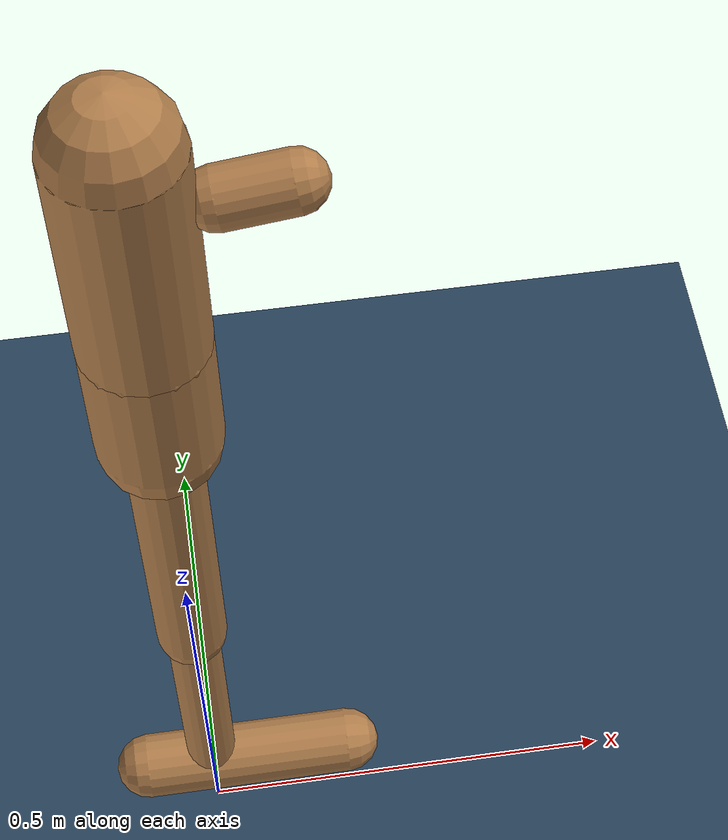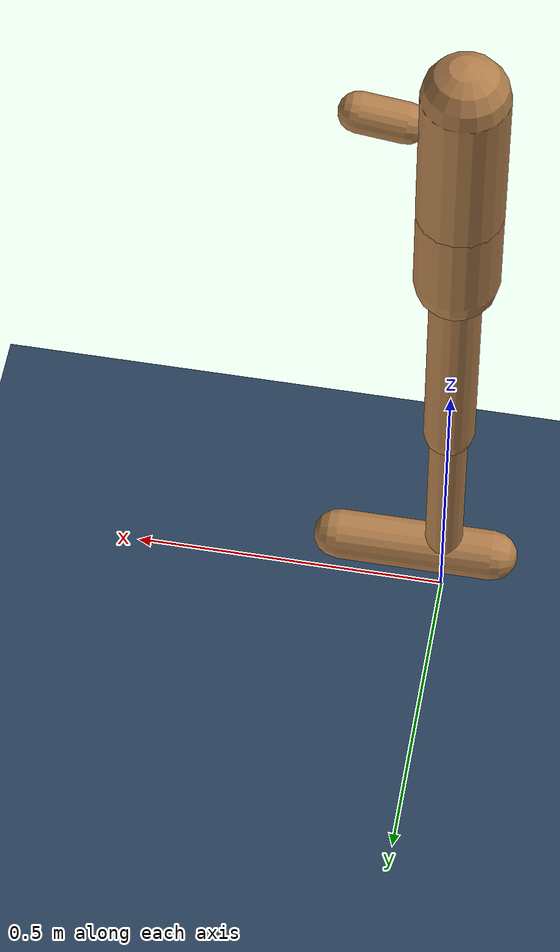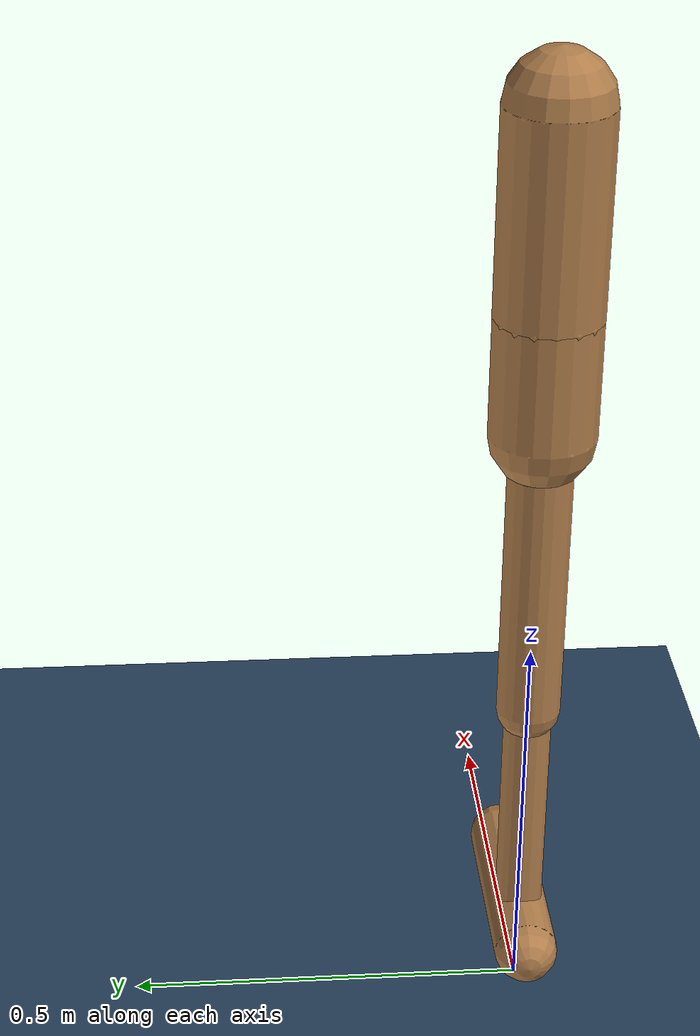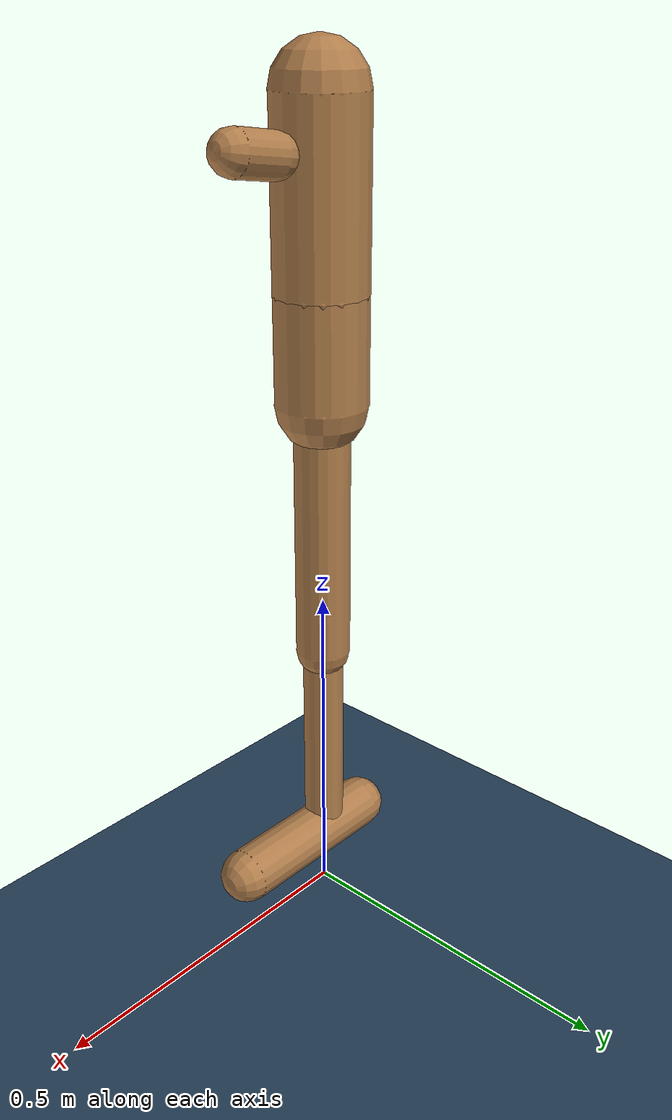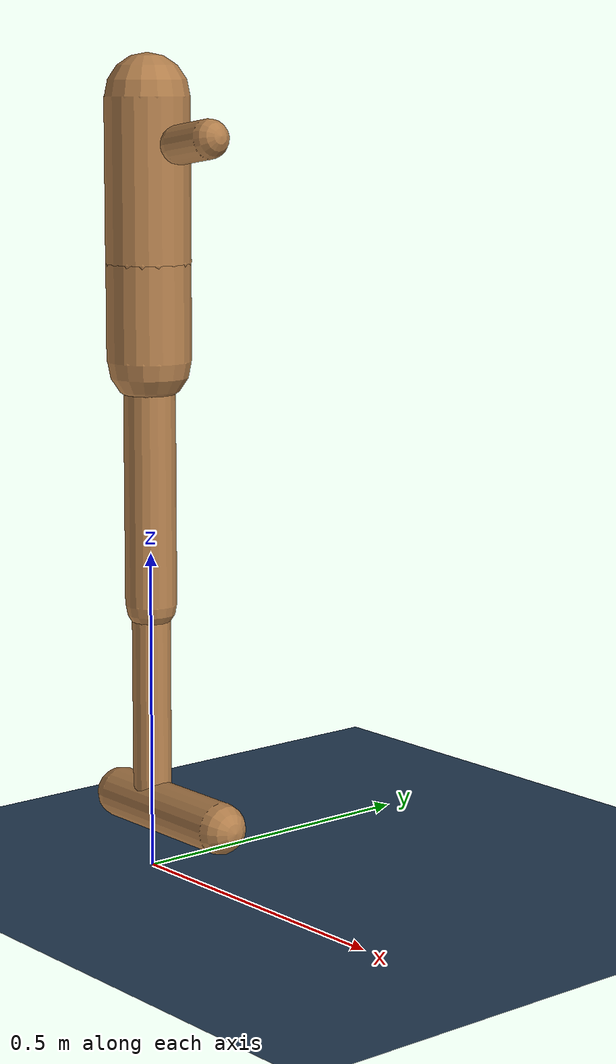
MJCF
<mujoco model="merged">
  <option timestep="0.005"/>
  <visual>
    <headlight ambient=".4 .4 .4" diffuse=".8 .8 .8" specular="0.1 0.1 0.1"/>
    <map znear=".01"/>
    <quality shadowsize="2048"/>
  </visual>
  <default>

    <default class="hopper">
      <joint type="hinge" axis="0 1 0" limited="true" damping=".05" armature=".2"/>
      <geom type="capsule" material="self"/>
      <site type="sphere" size="0.05" group="3"/>
    </default>
    <default class="free">
      <joint limited="false" damping="0" armature="0" stiffness="0"/>
    </default>
    <motor ctrlrange="-1 1" ctrllimited="true"/>

  </default>
  <asset>

      <texture name="skybox" type="skybox" builtin="gradient" rgb1=".4 .6 .8" rgb2="0 0 0"
               width="800" height="800" mark="random" markrgb="1 1 1"/>

    <texture name="grid" type="2d" builtin="checker" rgb1=".1 .2 .3" rgb2=".2 .3 .4" width="300" height="300" mark="edge" markrgb=".2 .3 .4"/>
    <material name="grid" texture="grid" texrepeat="1 1" texuniform="true" reflectance=".2"/>
    <material name="self" rgba=".7 .5 .3 1"/>
    <material name="self_default" rgba=".7 .5 .3 1"/>
    <material name="self_highlight" rgba="0 .5 .3 1"/>
    <material name="effector" rgba=".7 .4 .2 1"/>
    <material name="effector_default" rgba=".7 .4 .2 1"/>
    <material name="effector_highlight" rgba="0 .5 .3 1"/>
    <material name="decoration" rgba=".3 .5 .7 1"/>
    <material name="eye" rgba="0 .2 1 1"/>
    <material name="target" rgba=".6 .3 .3 1"/>
    <material name="target_default" rgba=".6 .3 .3 1"/>
    <material name="target_highlight" rgba=".6 .3 .3 .4"/>
    <material name="site" rgba=".5 .5 .5 .3"/>

  </asset>
  <worldbody>

    <camera name="cam0" pos="0 -2.8 0.8" euler="90 0 0" mode="trackcom"/>
    <camera name="back" pos="-2 -.2 1.2" xyaxes="0.2 -1 0 .5 0 2" mode="trackcom"/>
    <geom name="floor" type="plane" conaffinity="1" pos="48 0 0" size="50 1 .2" material="grid"/>
    <body name="torso" pos="0 0 1" childclass="hopper">
      <light name="top" pos="0 0 2" mode="trackcom"/>
      <joint name="rootx" type="slide" axis="1 0 0" class="free"/>
      <joint name="rootz" type="slide" axis="0 0 1" class="free"/>
      <joint name="rooty" type="hinge" axis="0 1 0" class="free"/>
      <geom name="torso" fromto="0 0 -.05 0 0 .2" size="0.0653"/>
      <geom name="nose" fromto=".08 0 .13 .15 0 .14" size="0.03"/>
      <body name="pelvis" pos="0 0 -.05">
        <joint name="waist" range="-30 30"/>
        <geom name="pelvis" fromto="0 0 0 0 0 -.15" size="0.065"/>
        <body name="thigh" pos="0 0 -.2">
          <joint name="hip" range="-170 10"/>
          <geom name="thigh" fromto="0 0 0 0 0 -.33" size="0.04"/>
          <body name="calf" pos="0 0 -.33">
            <joint name="knee" range="5 150"/>
            <geom name="calf" fromto="0 0 0 0 0 -.32" size="0.03"/>
            <body name="foot" pos="0 0 -.32">
              <joint name="ankle" range="-45 45"/>
              <geom name="foot" fromto="-.08 0 0 .17 0 0" size="0.04"/>
              <site name="touch_toe" pos=".17 0 0"/>
              <site name="touch_heel" pos="-.08 0 0"/>
            </body>
          </body>
        </body>
      </body>
    </body>

  </worldbody>
  <actuator>

    <motor name="waist" joint="waist" gear="30"/>
    <motor name="hip" joint="hip" gear="40"/>
    <motor name="knee" joint="knee" gear="30"/>
    <motor name="ankle" joint="ankle" gear="10"/>

  </actuator>
  <sensor>

    <subtreelinvel name="torso_subtreelinvel" body="torso"/>
    <touch name="touch_toe" site="touch_toe"/>
    <touch name="touch_heel" site="touch_heel"/>

  </sensor>
</mujoco>
